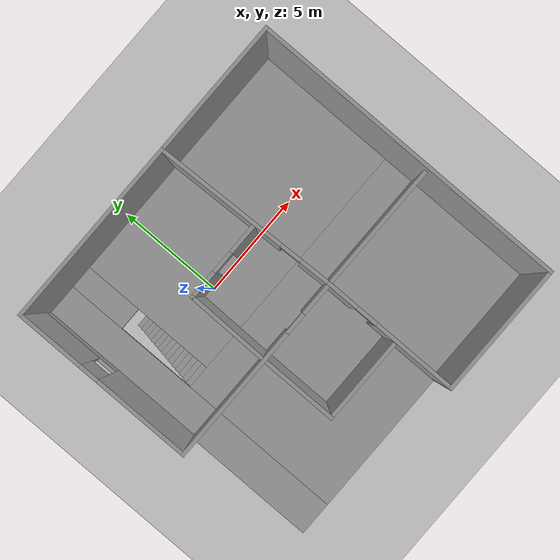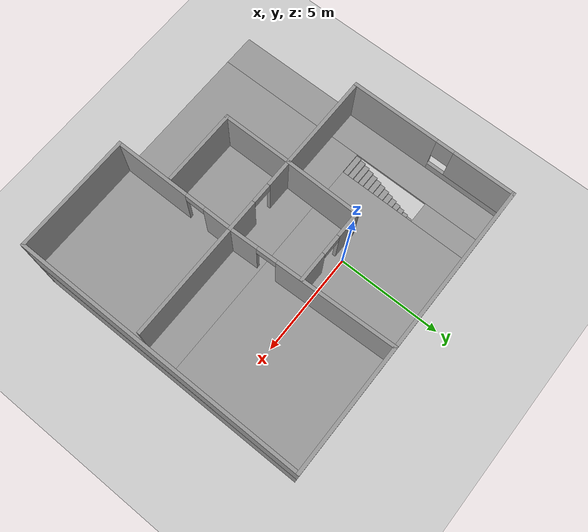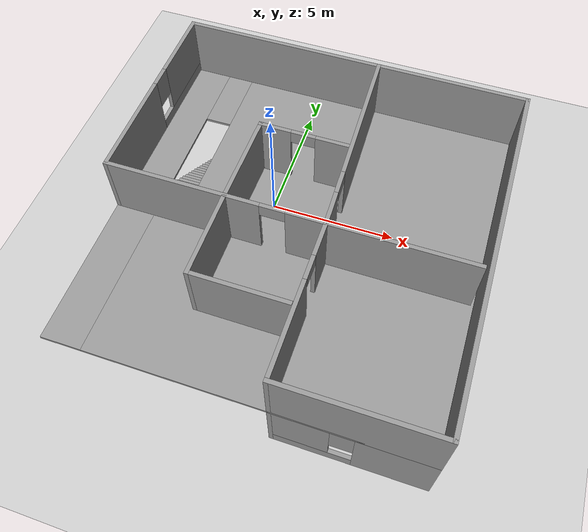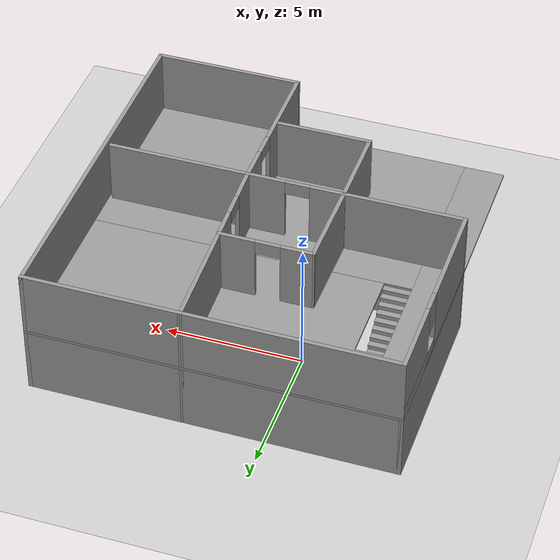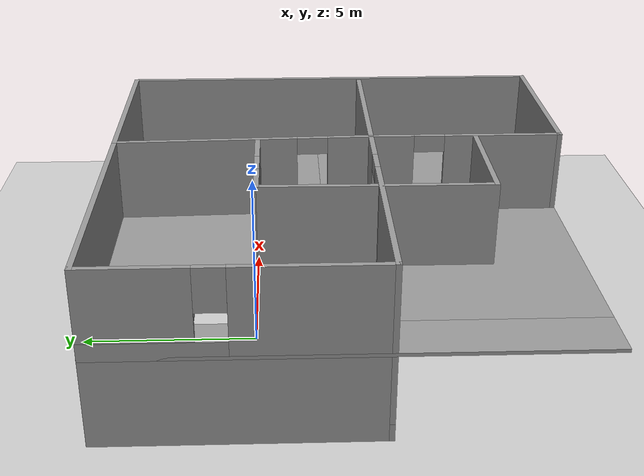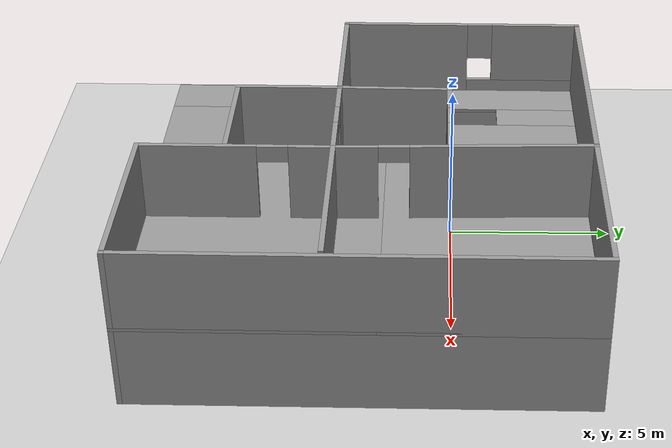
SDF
<sdf version="1.7">
 <world name="default">
  <light name="sun" type="directional">
   <pose>0 0 10 0 -0 0</pose>
   <diffuse>0.8 0.8 0.8 1</diffuse>
   <specular>0.2 0.2 0.2 1</specular>
   <attenuation>
    <range>1000</range>
    <constant>0.9</constant>
    <linear>0.01</linear>
    <quadratic>0.001</quadratic>
   </attenuation>
   <direction>-0.5 0.1 -0.9</direction>
   <spot><inner_angle>0</inner_angle><outer_angle>0</outer_angle><falloff>0</falloff></spot>
  </light>
  <model name="ground_plane">
   <static>1</static>
   <link name="link">
    <collision name="collision">
     <geometry><plane><normal>0 0 1</normal><size>100 100</size></plane></geometry>
     <surface>
      <contact><collide_bitmask>65535</collide_bitmask></contact>
      <friction><ode><mu>100</mu><mu2>50</mu2></ode></friction>
     </surface>
    </collision>
    <visual name="visual">
     <cast_shadows>0</cast_shadows>
     <geometry><plane><normal>0 0 1</normal><size>100 100</size></plane></geometry>
     <material>
      <script><uri>file://media/materials/scripts/gazebo.material</uri><name>Gazebo/Grey</name></script>
     </material>
    </visual>
   </link>
  </model>
  <gravity>0 0 -9.8</gravity>
  <magnetic_field>6e-06 2.3e-05 -4.2e-05</magnetic_field>
  <atmosphere type="adiabatic"/>
  <physics type="ode">
   <max_step_size>0.001</max_step_size>
   <real_time_factor>1</real_time_factor>
   <real_time_update_rate>1000</real_time_update_rate>
  </physics>
  <scene><ambient>0.4 0.4 0.4 1</ambient><background>0.7 0.7 0.7 1</background><shadows>1</shadows></scene>
  <spherical_coordinates>
   <surface_model>EARTH_WGS84</surface_model>
   <latitude_deg>0</latitude_deg>
   <longitude_deg>0</longitude_deg>
   <elevation>0</elevation>
   <heading_deg>0</heading_deg>
  </spherical_coordinates>
  <model name="two_level_house">
   <pose>1.88919 -2.48472 0 0 -0 0</pose>
   <link name="Floor_0">
    <pose>-0 0 2.5 0 -0 0</pose>
    <visual name="Floor_0_Visual_0">
     <pose>-5.94304 0 0.05 0 -0 0</pose>
     <geometry><box><size>1.46393 13.2525 0.1</size></box></geometry>
     <material>
      <script><uri>file://media/materials/scripts/gazebo.material</uri><name>Gazebo/Grey</name></script>
      <ambient>1 1 1 1</ambient>
     </material>
     <meta><layer>1</layer></meta>
    </visual>
    <collision name="Floor_0_Collision_0">
     <geometry><box><size>1.46393 13.2525 0.1</size></box></geometry>
     <pose>-5.94304 0 0.05 0 -0 0</pose>
    </collision>
    <visual name="Floor_0_Visual_1">
     <pose>0.731963 -3.0825 0.05 0 -0 0</pose>
     <geometry><box><size>11.8861 7.08746 0.1</size></box></geometry>
     <material>
      <script><uri>file://media/materials/scripts/gazebo.material</uri><name>Gazebo/Grey</name></script>
      <ambient>1 1 1 1</ambient>
     </material>
     <meta><layer>1</layer></meta>
    </visual>
    <collision name="Floor_0_Collision_1">
     <geometry><box><size>11.8861 7.08746 0.1</size></box></geometry>
     <pose>0.731963 -3.0825 0.05 0 -0 0</pose>
    </collision>
    <visual name="Floor_0_Visual_2">
     <pose>1.23196 3.54373 0.05 0 -0 0</pose>
     <geometry><box><size>10.8861 6.16499 0.1</size></box></geometry>
     <material>
      <script><uri>file://media/materials/scripts/gazebo.material</uri><name>Gazebo/Grey</name></script>
      <ambient>1 1 1 1</ambient>
     </material>
     <meta><layer>1</layer></meta>
    </visual>
    <collision name="Floor_0_Collision_2">
     <geometry><box><size>10.8861 6.16499 0.1</size></box></geometry>
     <pose>1.23196 3.54373 0.05 0 -0 0</pose>
    </collision>
    <visual name="Floor_0_Visual_3">
     <pose>-4.71107 5.29373 0.05 0 -0 0</pose>
     <geometry><box><size>1 2.66499 0.1</size></box></geometry>
     <material>
      <script><uri>file://media/materials/scripts/gazebo.material</uri><name>Gazebo/Grey</name></script>
      <ambient>1 1 1 1</ambient>
     </material>
     <meta><layer>1</layer></meta>
    </visual>
    <collision name="Floor_0_Collision_3">
     <geometry><box><size>1 2.66499 0.1</size></box></geometry>
     <pose>-4.71107 5.29373 0.05 0 -0 0</pose>
    </collision>
   </link>
   <link name="Stairs_0">
    <visual name="Stairs_0_Visual_0">
     <pose>-4.71107 3.84457 0.083333 0 -0 0</pose>
     <geometry><box><size>1 0.233333 0.166667</size></box></geometry>
     <material>
      <script><uri>file://media/materials/scripts/gazebo.material</uri><name>Gazebo/Grey</name></script>
      <ambient>1 1 1 1</ambient>
     </material>
     <meta><layer>0</layer></meta>
    </visual>
    <collision name="Stairs_0_Collision_0">
     <geometry><box><size>1 0.233333 0.166667</size></box></geometry>
     <pose>-4.71107 3.84457 0.083333 0 -0 0</pose>
    </collision>
    <visual name="Stairs_0_Visual_1">
     <pose>-4.71107 3.61124 0.25 0 -0 0</pose>
     <geometry><box><size>1 0.233333 0.166667</size></box></geometry>
     <material>
      <script><uri>file://media/materials/scripts/gazebo.material</uri><name>Gazebo/Grey</name></script>
      <ambient>1 1 1 1</ambient>
     </material>
     <meta><layer>0</layer></meta>
    </visual>
    <collision name="Stairs_0_Collision_1">
     <geometry><box><size>1 0.233333 0.166667</size></box></geometry>
     <pose>-4.71107 3.61124 0.25 0 -0 0</pose>
    </collision>
    <visual name="Stairs_0_Visual_2">
     <pose>-4.71107 3.3779 0.416667 0 -0 0</pose>
     <geometry><box><size>1 0.233333 0.166667</size></box></geometry>
     <material>
      <script><uri>file://media/materials/scripts/gazebo.material</uri><name>Gazebo/Grey</name></script>
      <ambient>1 1 1 1</ambient>
     </material>
     <meta><layer>0</layer></meta>
    </visual>
    <collision name="Stairs_0_Collision_2">
     <geometry><box><size>1 0.233333 0.166667</size></box></geometry>
     <pose>-4.71107 3.3779 0.416667 0 -0 0</pose>
    </collision>
    <visual name="Stairs_0_Visual_3">
     <pose>-4.71107 3.14457 0.583333 0 -0 0</pose>
     <geometry><box><size>1 0.233333 0.166667</size></box></geometry>
     <material>
      <script><uri>file://media/materials/scripts/gazebo.material</uri><name>Gazebo/Grey</name></script>
      <ambient>1 1 1 1</ambient>
     </material>
     <meta><layer>0</layer></meta>
    </visual>
    <collision name="Stairs_0_Collision_3">
     <geometry><box><size>1 0.233333 0.166667</size></box></geometry>
     <pose>-4.71107 3.14457 0.583333 0 -0 0</pose>
    </collision>
    <visual name="Stairs_0_Visual_4">
     <pose>-4.71107 2.91124 0.75 0 -0 0</pose>
     <geometry><box><size>1 0.233333 0.166667</size></box></geometry>
     <material>
      <script><uri>file://media/materials/scripts/gazebo.material</uri><name>Gazebo/Grey</name></script>
      <ambient>1 1 1 1</ambient>
     </material>
     <meta><layer>0</layer></meta>
    </visual>
    <collision name="Stairs_0_Collision_4">
     <geometry><box><size>1 0.233333 0.166667</size></box></geometry>
     <pose>-4.71107 2.91124 0.75 0 -0 0</pose>
    </collision>
    <visual name="Stairs_0_Visual_5">
     <pose>-4.71107 2.6779 0.916667 0 -0 0</pose>
     <geometry><box><size>1 0.233333 0.166667</size></box></geometry>
     <material>
      <script><uri>file://media/materials/scripts/gazebo.material</uri><name>Gazebo/Grey</name></script>
      <ambient>1 1 1 1</ambient>
     </material>
     <meta><layer>0</layer></meta>
    </visual>
    <collision name="Stairs_0_Collision_5">
     <geometry><box><size>1 0.233333 0.166667</size></box></geometry>
     <pose>-4.71107 2.6779 0.916667 0 -0 0</pose>
    </collision>
    <visual name="Stairs_0_Visual_6">
     <pose>-4.71107 2.44457 1.08333 0 -0 0</pose>
     <geometry><box><size>1 0.233333 0.166667</size></box></geometry>
     <material>
      <script><uri>file://media/materials/scripts/gazebo.material</uri><name>Gazebo/Grey</name></script>
      <ambient>1 1 1 1</ambient>
     </material>
     <meta><layer>0</layer></meta>
    </visual>
    <collision name="Stairs_0_Collision_6">
     <geometry><box><size>1 0.233333 0.166667</size></box></geometry>
     <pose>-4.71107 2.44457 1.08333 0 -0 0</pose>
    </collision>
    <visual name="Stairs_0_Visual_7">
     <pose>-4.71107 2.21124 1.25 0 -0 0</pose>
     <geometry><box><size>1 0.233333 0.166667</size></box></geometry>
     <material>
      <script><uri>file://media/materials/scripts/gazebo.material</uri><name>Gazebo/Grey</name></script>
      <ambient>1 1 1 1</ambient>
     </material>
     <meta><layer>0</layer></meta>
    </visual>
    <collision name="Stairs_0_Collision_7">
     <geometry><box><size>1 0.233333 0.166667</size></box></geometry>
     <pose>-4.71107 2.21124 1.25 0 -0 0</pose>
    </collision>
    <visual name="Stairs_0_Visual_8">
     <pose>-4.71107 1.9779 1.41667 0 -0 0</pose>
     <geometry><box><size>1 0.233333 0.166667</size></box></geometry>
     <material>
      <script><uri>file://media/materials/scripts/gazebo.material</uri><name>Gazebo/Grey</name></script>
      <ambient>1 1 1 1</ambient>
     </material>
     <meta><layer>0</layer></meta>
    </visual>
    <collision name="Stairs_0_Collision_8">
     <geometry><box><size>1 0.233333 0.166667</size></box></geometry>
     <pose>-4.71107 1.9779 1.41667 0 -0 0</pose>
    </collision>
    <visual name="Stairs_0_Visual_9">
     <pose>-4.71107 1.74457 1.58333 0 -0 0</pose>
     <geometry><box><size>1 0.233333 0.166667</size></box></geometry>
     <material>
      <script><uri>file://media/materials/scripts/gazebo.material</uri><name>Gazebo/Grey</name></script>
      <ambient>1 1 1 1</ambient>
     </material>
     <meta><layer>0</layer></meta>
    </visual>
    <collision name="Stairs_0_Collision_9">
     <geometry><box><size>1 0.233333 0.166667</size></box></geometry>
     <pose>-4.71107 1.74457 1.58333 0 -0 0</pose>
    </collision>
    <visual name="Stairs_0_Visual_10">
     <pose>-4.71107 1.51124 1.75 0 -0 0</pose>
     <geometry><box><size>1 0.233333 0.166667</size></box></geometry>
     <material>
      <script><uri>file://media/materials/scripts/gazebo.material</uri><name>Gazebo/Grey</name></script>
      <ambient>1 1 1 1</ambient>
     </material>
     <meta><layer>0</layer></meta>
    </visual>
    <collision name="Stairs_0_Collision_10">
     <geometry><box><size>1 0.233333 0.166667</size></box></geometry>
     <pose>-4.71107 1.51124 1.75 0 -0 0</pose>
    </collision>
    <visual name="Stairs_0_Visual_11">
     <pose>-4.71107 1.2779 1.91667 0 -0 0</pose>
     <geometry><box><size>1 0.233333 0.166667</size></box></geometry>
     <material>
      <script><uri>file://media/materials/scripts/gazebo.material</uri><name>Gazebo/Grey</name></script>
      <ambient>1 1 1 1</ambient>
     </material>
     <meta><layer>0</layer></meta>
    </visual>
    <collision name="Stairs_0_Collision_11">
     <geometry><box><size>1 0.233333 0.166667</size></box></geometry>
     <pose>-4.71107 1.2779 1.91667 0 -0 0</pose>
    </collision>
    <visual name="Stairs_0_Visual_12">
     <pose>-4.71107 1.04457 2.08333 0 -0 0</pose>
     <geometry><box><size>1 0.233333 0.166667</size></box></geometry>
     <material>
      <script><uri>file://media/materials/scripts/gazebo.material</uri><name>Gazebo/Grey</name></script>
      <ambient>1 1 1 1</ambient>
     </material>
     <meta><layer>0</layer></meta>
    </visual>
    <collision name="Stairs_0_Collision_12">
     <geometry><box><size>1 0.233333 0.166667</size></box></geometry>
     <pose>-4.71107 1.04457 2.08333 0 -0 0</pose>
    </collision>
    <visual name="Stairs_0_Visual_13">
     <pose>-4.71107 0.811236 2.25 0 -0 0</pose>
     <geometry><box><size>1 0.233333 0.166667</size></box></geometry>
     <material>
      <script><uri>file://media/materials/scripts/gazebo.material</uri><name>Gazebo/Grey</name></script>
      <ambient>1 1 1 1</ambient>
     </material>
     <meta><layer>0</layer></meta>
    </visual>
    <collision name="Stairs_0_Collision_13">
     <geometry><box><size>1 0.233333 0.166667</size></box></geometry>
     <pose>-4.71107 0.811236 2.25 0 -0 0</pose>
    </collision>
    <visual name="Stairs_0_Visual_14">
     <pose>-4.71107 0.577903 2.41667 0 -0 0</pose>
     <geometry><box><size>1 0.233333 0.166667</size></box></geometry>
     <material>
      <script><uri>file://media/materials/scripts/gazebo.material</uri><name>Gazebo/Grey</name></script>
      <ambient>1 1 1 1</ambient>
     </material>
     <meta><layer>0</layer></meta>
    </visual>
    <collision name="Stairs_0_Collision_14">
     <geometry><box><size>1 0.233333 0.166667</size></box></geometry>
     <pose>-4.71107 0.577903 2.41667 0 -0 0</pose>
    </collision>
   </link>
   <link name="Wall_0">
    <collision name="Wall_0_Collision">
     <geometry><box><size>7.75 0.15 2.5</size></box></geometry>
     <pose>0 0 1.25 0 -0 0</pose>
    </collision>
    <visual name="Wall_0_Visual">
     <pose>0 0 1.25 0 -0 0</pose>
     <geometry><box><size>7.75 0.15 2.5</size></box></geometry>
     <material>
      <script><uri>file://media/materials/scripts/gazebo.material</uri><name>Gazebo/Grey</name></script>
      <ambient>1 1 1 1</ambient>
     </material>
     <meta><layer>0</layer></meta>
    </visual>
    <pose>-2.8 6.54877 0 0 -0 0</pose>
   </link>
   <link name="Wall_1">
    <collision name="Wall_1_Collision">
     <geometry><box><size>5.75 0.15 2.5</size></box></geometry>
     <pose>0 0 1.25 0 -0 0</pose>
    </collision>
    <visual name="Wall_1_Visual">
     <pose>0 0 1.25 0 -0 0</pose>
     <geometry><box><size>5.75 0.15 2.5</size></box></geometry>
     <material>
      <script><uri>file://media/materials/scripts/gazebo.material</uri><name>Gazebo/Grey</name></script>
      <ambient>1 1 1 1</ambient>
     </material>
     <meta><layer>0</layer></meta>
    </visual>
    <pose>3.8 6.54877 0 0 -0 0</pose>
   </link>
   <link name="Wall_10">
    <pose>3.8 -0.951228 0 0 -0 0</pose>
    <visual name="Wall_10_Visual_0">
     <pose>-1.68287 0 1.25 0 -0 0</pose>
     <geometry><box><size>1.88426 0.15 2.5</size></box></geometry>
     <material>
      <script><uri>file://media/materials/scripts/gazebo.material</uri><name>Gazebo/Grey</name></script>
      <ambient>1 1 1 1</ambient>
     </material>
     <meta><layer>0</layer></meta>
    </visual>
    <collision name="Wall_10_Collision_0">
     <geometry><box><size>1.88426 0.15 2.5</size></box></geometry>
     <pose>-1.68287 0 1.25 0 -0 0</pose>
    </collision>
    <visual name="Wall_10_Visual_1">
     <pose>1.39213 0 1.25 0 -0 0</pose>
     <geometry><box><size>2.46574 0.15 2.5</size></box></geometry>
     <material>
      <script><uri>file://media/materials/scripts/gazebo.material</uri><name>Gazebo/Grey</name></script>
      <ambient>1 1 1 1</ambient>
     </material>
     <meta><layer>0</layer></meta>
    </visual>
    <collision name="Wall_10_Collision_1">
     <geometry><box><size>2.46574 0.15 2.5</size></box></geometry>
     <pose>1.39213 0 1.25 0 -0 0</pose>
    </collision>
    <visual name="Wall_10_Visual_2">
     <pose>-0.290744 0 2.25 0 -0 0</pose>
     <geometry><box><size>0.9 0.15 0.5</size></box></geometry>
     <material>
      <script><uri>file://media/materials/scripts/gazebo.material</uri><name>Gazebo/Grey</name></script>
      <ambient>1 1 1 1</ambient>
     </material>
     <meta><layer>0</layer></meta>
    </visual>
    <collision name="Wall_10_Collision_2">
     <geometry><box><size>0.9 0.15 0.5</size></box></geometry>
     <pose>-0.290744 0 2.25 0 -0 0</pose>
    </collision>
   </link>
   <link name="Wall_12">
    <collision name="Wall_12_Collision">
     <geometry><box><size>3.25 0.15 2.5</size></box></geometry>
     <pose>0 0 1.25 0 -0 0</pose>
    </collision>
    <visual name="Wall_12_Visual">
     <pose>0 0 1.25 0 -0 0</pose>
     <geometry><box><size>3.25 0.15 2.5</size></box></geometry>
     <material>
      <script><uri>file://media/materials/scripts/gazebo.material</uri><name>Gazebo/Grey</name></script>
      <ambient>1 1 1 1</ambient>
     </material>
     <meta><layer>0</layer></meta>
    </visual>
    <pose>-2.26247 -2.48698 0 0 -0 -1.5708</pose>
   </link>
   <link name="Wall_13">
    <pose>-0.587465 -4.03697 0 0 -0 0</pose>
    <visual name="Wall_13_Visual_0">
     <pose>-1.15045 0 1.25 0 -0 0</pose>
     <geometry><box><size>1.19911 0.15 2.5</size></box></geometry>
     <material>
      <script><uri>file://media/materials/scripts/gazebo.material</uri><name>Gazebo/Grey</name></script>
      <ambient>1 1 1 1</ambient>
     </material>
     <meta><layer>0</layer></meta>
    </visual>
    <collision name="Wall_13_Collision_0">
     <geometry><box><size>1.19911 0.15 2.5</size></box></geometry>
     <pose>-1.15045 0 1.25 0 -0 0</pose>
    </collision>
    <visual name="Wall_13_Visual_1">
     <pose>1.04955 0 1.25 0 -0 0</pose>
     <geometry><box><size>1.40089 0.15 2.5</size></box></geometry>
     <material>
      <script><uri>file://media/materials/scripts/gazebo.material</uri><name>Gazebo/Grey</name></script>
      <ambient>1 1 1 1</ambient>
     </material>
     <meta><layer>0</layer></meta>
    </visual>
    <collision name="Wall_13_Collision_1">
     <geometry><box><size>1.40089 0.15 2.5</size></box></geometry>
     <pose>1.04955 0 1.25 0 -0 0</pose>
    </collision>
    <visual name="Wall_13_Visual_2">
     <pose>-0.100894 0 2.25 0 -0 0</pose>
     <geometry><box><size>0.9 0.15 0.5</size></box></geometry>
     <material>
      <script><uri>file://media/materials/scripts/gazebo.material</uri><name>Gazebo/Grey</name></script>
      <ambient>1 1 1 1</ambient>
     </material>
     <meta><layer>0</layer></meta>
    </visual>
    <collision name="Wall_13_Collision_2">
     <geometry><box><size>0.9 0.15 0.5</size></box></geometry>
     <pose>-0.100894 0 2.25 0 -0 0</pose>
    </collision>
   </link>
   <link name="Wall_15">
    <collision name="Wall_15_Collision">
     <geometry><box><size>3.5 0.15 2.5</size></box></geometry>
     <pose>0 0 1.25 0 -0 0</pose>
    </collision>
    <visual name="Wall_15_Visual">
     <pose>0 0 1.25 0 -0 0</pose>
     <geometry><box><size>3.5 0.15 2.5</size></box></geometry>
     <material>
      <script><uri>file://media/materials/scripts/gazebo.material</uri><name>Gazebo/Grey</name></script>
      <ambient>1 1 1 1</ambient>
     </material>
     <meta><layer>0</layer></meta>
    </visual>
    <pose>-0.544393 2.38614 0 0 -0 3.14159</pose>
   </link>
   <link name="Wall_16">
    <pose>-2.24093 0.724581 0 0 -0 -1.58376</pose>
    <visual name="Wall_16_Visual_0">
     <pose>-0.995888 0 1.25 0 -0 0</pose>
     <geometry><box><size>1.48162 0.15 2.5</size></box></geometry>
     <material>
      <script><uri>file://media/materials/scripts/gazebo.material</uri><name>Gazebo/Grey</name></script>
      <ambient>1 1 1 1</ambient>
     </material>
     <meta><layer>0</layer></meta>
    </visual>
    <collision name="Wall_16_Collision_0">
     <geometry><box><size>1.48162 0.15 2.5</size></box></geometry>
     <pose>-0.995888 0 1.25 0 -0 0</pose>
    </collision>
    <visual name="Wall_16_Visual_1">
     <pose>1.19081 0 1.25 0 -0 0</pose>
     <geometry><box><size>1.09177 0.15 2.5</size></box></geometry>
     <material>
      <script><uri>file://media/materials/scripts/gazebo.material</uri><name>Gazebo/Grey</name></script>
      <ambient>1 1 1 1</ambient>
     </material>
     <meta><layer>0</layer></meta>
    </visual>
    <collision name="Wall_16_Collision_1">
     <geometry><box><size>1.09177 0.15 2.5</size></box></geometry>
     <pose>1.19081 0 1.25 0 -0 0</pose>
    </collision>
    <visual name="Wall_16_Visual_2">
     <pose>0.19492 0 2.25 0 -0 0</pose>
     <geometry><box><size>0.9 0.15 0.5</size></box></geometry>
     <material>
      <script><uri>file://media/materials/scripts/gazebo.material</uri><name>Gazebo/Grey</name></script>
      <ambient>1 1 1 1</ambient>
     </material>
     <meta><layer>0</layer></meta>
    </visual>
    <collision name="Wall_16_Collision_2">
     <geometry><box><size>0.9 0.15 0.5</size></box></geometry>
     <pose>0.19492 0 2.25 0 -0 0</pose>
    </collision>
   </link>
   <link name="Wall_18">
    <collision name="Wall_18_Collision">
     <geometry><box><size>7.75 0.15 2.5</size></box></geometry>
     <pose>0 0 1.25 0 -0 0</pose>
    </collision>
    <visual name="Wall_18_Visual">
     <pose>0 0 1.25 0 -0 0</pose>
     <geometry><box><size>7.75 0.15 2.5</size></box></geometry>
     <material>
      <script><uri>file://media/materials/scripts/gazebo.material</uri><name>Gazebo/Grey</name></script>
      <ambient>1 1 1 1</ambient>
     </material>
     <meta><layer>1</layer></meta>
    </visual>
    <pose>-2.8 6.54877 2.5 0 -0 0</pose>
   </link>
   <link name="Wall_19">
    <collision name="Wall_19_Collision">
     <geometry><box><size>5.75 0.15 2.5</size></box></geometry>
     <pose>0 0 1.25 0 -0 0</pose>
    </collision>
    <visual name="Wall_19_Visual">
     <pose>0 0 1.25 0 -0 0</pose>
     <geometry><box><size>5.75 0.15 2.5</size></box></geometry>
     <material>
      <script><uri>file://media/materials/scripts/gazebo.material</uri><name>Gazebo/Grey</name></script>
      <ambient>1 1 1 1</ambient>
     </material>
     <meta><layer>1</layer></meta>
    </visual>
    <pose>3.8 6.54877 2.5 0 -0 0</pose>
   </link>
   <link name="Wall_2">
    <collision name="Wall_2_Collision">
     <geometry><box><size>13.25 0.15 2.5</size></box></geometry>
     <pose>0 0 1.25 0 -0 0</pose>
    </collision>
    <visual name="Wall_2_Visual">
     <pose>0 0 1.25 0 -0 0</pose>
     <geometry><box><size>13.25 0.15 2.5</size></box></geometry>
     <material>
      <script><uri>file://media/materials/scripts/gazebo.material</uri><name>Gazebo/Grey</name></script>
      <ambient>1 1 1 1</ambient>
     </material>
     <meta><layer>0</layer></meta>
    </visual>
    <pose>6.6 -0.001228 0 0 -0 -1.5708</pose>
   </link>
   <link name="Wall_20">
    <collision name="Wall_20_Collision">
     <geometry><box><size>13.25 0.15 2.5</size></box></geometry>
     <pose>0 0 1.25 0 -0 0</pose>
    </collision>
    <visual name="Wall_20_Visual">
     <pose>0 0 1.25 0 -0 0</pose>
     <geometry><box><size>13.25 0.15 2.5</size></box></geometry>
     <material>
      <script><uri>file://media/materials/scripts/gazebo.material</uri><name>Gazebo/Grey</name></script>
      <ambient>1 1 1 1</ambient>
     </material>
     <meta><layer>1</layer></meta>
    </visual>
    <pose>6.6 -0.001228 2.5 0 -0 -1.5708</pose>
   </link>
   <link name="Wall_21">
    <collision name="Wall_21_Collision">
     <geometry><box><size>5.5 0.15 2.5</size></box></geometry>
     <pose>0 0 1.25 0 -0 0</pose>
    </collision>
    <visual name="Wall_21_Visual">
     <pose>0 0 1.25 0 -0 0</pose>
     <geometry><box><size>5.5 0.15 2.5</size></box></geometry>
     <material>
      <script><uri>file://media/materials/scripts/gazebo.material</uri><name>Gazebo/Grey</name></script>
      <ambient>1 1 1 1</ambient>
     </material>
     <meta><layer>1</layer></meta>
    </visual>
    <pose>3.925 -6.55123 2.5 0 -0 3.14159</pose>
   </link>
   <link name="Wall_22">
    <pose>1.25 -3.75123 2.5 0 -0 1.5708</pose>
    <visual name="Wall_22_Visual_0">
     <pose>-1.1265 0 1.25 0 -0 0</pose>
     <geometry><box><size>3.497 0.15 2.5</size></box></geometry>
     <material>
      <script><uri>file://media/materials/scripts/gazebo.material</uri><name>Gazebo/Grey</name></script>
      <ambient>1 1 1 1</ambient>
     </material>
     <meta><layer>1</layer></meta>
    </visual>
    <collision name="Wall_22_Collision_0">
     <geometry><box><size>3.497 0.15 2.5</size></box></geometry>
     <pose>-1.1265 0 1.25 0 -0 0</pose>
    </collision>
    <visual name="Wall_22_Visual_1">
     <pose>2.1985 0 1.25 0 -0 0</pose>
     <geometry><box><size>1.35301 0.15 2.5</size></box></geometry>
     <material>
      <script><uri>file://media/materials/scripts/gazebo.material</uri><name>Gazebo/Grey</name></script>
      <ambient>1 1 1 1</ambient>
     </material>
     <meta><layer>1</layer></meta>
    </visual>
    <collision name="Wall_22_Collision_1">
     <geometry><box><size>1.35301 0.15 2.5</size></box></geometry>
     <pose>2.1985 0 1.25 0 -0 0</pose>
    </collision>
    <visual name="Wall_22_Visual_2">
     <pose>1.072 0 2.25 0 -0 0</pose>
     <geometry><box><size>0.9 0.15 0.5</size></box></geometry>
     <material>
      <script><uri>file://media/materials/scripts/gazebo.material</uri><name>Gazebo/Grey</name></script>
      <ambient>1 1 1 1</ambient>
     </material>
     <meta><layer>1</layer></meta>
    </visual>
    <collision name="Wall_22_Collision_2">
     <geometry><box><size>0.9 0.15 0.5</size></box></geometry>
     <pose>1.072 0 2.25 0 -0 0</pose>
    </collision>
   </link>
   <link name="Wall_23">
    <pose>-2.675 -0.951228 2.5 0 -0 3.14159</pose>
    <visual name="Wall_23_Visual_0">
     <pose>-3.27079 0 1.25 0 -0 0</pose>
     <geometry><box><size>1.45842 0.15 2.5</size></box></geometry>
     <material>
      <script><uri>file://media/materials/scripts/gazebo.material</uri><name>Gazebo/Grey</name></script>
      <ambient>1 1 1 1</ambient>
     </material>
     <meta><layer>1</layer></meta>
    </visual>
    <collision name="Wall_23_Collision_0">
     <geometry><box><size>1.45842 0.15 2.5</size></box></geometry>
     <pose>-3.27079 0 1.25 0 -0 0</pose>
    </collision>
    <visual name="Wall_23_Visual_1">
     <pose>1.17921 0 1.25 0 -0 0</pose>
     <geometry><box><size>5.64158 0.15 2.5</size></box></geometry>
     <material>
      <script><uri>file://media/materials/scripts/gazebo.material</uri><name>Gazebo/Grey</name></script>
      <ambient>1 1 1 1</ambient>
     </material>
     <meta><layer>1</layer></meta>
    </visual>
    <collision name="Wall_23_Collision_1">
     <geometry><box><size>5.64158 0.15 2.5</size></box></geometry>
     <pose>1.17921 0 1.25 0 -0 0</pose>
    </collision>
    <visual name="Wall_23_Visual_2">
     <pose>-2.09158 0 2.25 0 -0 0</pose>
     <geometry><box><size>0.9 0.15 0.5</size></box></geometry>
     <material>
      <script><uri>file://media/materials/scripts/gazebo.material</uri><name>Gazebo/Grey</name></script>
      <ambient>1 1 1 1</ambient>
     </material>
     <meta><layer>1</layer></meta>
    </visual>
    <collision name="Wall_23_Collision_2">
     <geometry><box><size>0.9 0.15 0.5</size></box></geometry>
     <pose>-2.09158 0 2.25 0 -0 0</pose>
    </collision>
   </link>
   <link name="Wall_24">
    <pose>-6.6 2.79877 2.5 0 -0 1.5708</pose>
    <visual name="Wall_24_Visual_0">
     <pose>-1.81161 0 1.25 0 -0 0</pose>
     <geometry><box><size>4.02679 0.15 2.5</size></box></geometry>
     <material>
      <script><uri>file://media/materials/scripts/gazebo.material</uri><name>Gazebo/Grey</name></script>
      <ambient>1 1 1 1</ambient>
     </material>
     <meta><layer>1</layer></meta>
    </visual>
    <collision name="Wall_24_Collision_0">
     <geometry><box><size>4.02679 0.15 2.5</size></box></geometry>
     <pose>-1.81161 0 1.25 0 -0 0</pose>
    </collision>
    <visual name="Wall_24_Visual_1">
     <pose>2.01339 0 0.25 0 -0 0</pose>
     <geometry><box><size>3.62321 0.15 0.5</size></box></geometry>
     <material>
      <script><uri>file://media/materials/scripts/gazebo.material</uri><name>Gazebo/Grey</name></script>
      <ambient>1 1 1 1</ambient>
     </material>
     <meta><layer>1</layer></meta>
    </visual>
    <collision name="Wall_24_Collision_1">
     <geometry><box><size>3.62321 0.15 0.5</size></box></geometry>
     <pose>2.01339 0 0.25 0 -0 0</pose>
    </collision>
    <visual name="Wall_24_Visual_2">
     <pose>2.41339 0 1.5 0 -0 0</pose>
     <geometry><box><size>2.82321 0.15 2</size></box></geometry>
     <material>
      <script><uri>file://media/materials/scripts/gazebo.material</uri><name>Gazebo/Grey</name></script>
      <ambient>1 1 1 1</ambient>
     </material>
     <meta><layer>1</layer></meta>
    </visual>
    <collision name="Wall_24_Collision_2">
     <geometry><box><size>2.82321 0.15 2</size></box></geometry>
     <pose>2.41339 0 1.5 0 -0 0</pose>
    </collision>
    <visual name="Wall_24_Visual_3">
     <pose>0.601789 0 1.9 0 -0 0</pose>
     <geometry><box><size>0.8 0.15 1.2</size></box></geometry>
     <material>
      <script><uri>file://media/materials/scripts/gazebo.material</uri><name>Gazebo/Grey</name></script>
      <ambient>1 1 1 1</ambient>
     </material>
     <meta><layer>1</layer></meta>
    </visual>
    <collision name="Wall_24_Collision_3">
     <geometry><box><size>0.8 0.15 1.2</size></box></geometry>
     <pose>0.601789 0 1.9 0 -0 0</pose>
    </collision>
   </link>
   <link name="Wall_25">
    <pose>1.125 2.79877 2.5 0 -0 -1.53747</pose>
    <visual name="Wall_25_Visual_0">
     <pose>-1.12873 0 1.25 0 -0 0</pose>
     <geometry><box><size>5.3967 0.15 2.5</size></box></geometry>
     <material>
      <script><uri>file://media/materials/scripts/gazebo.material</uri><name>Gazebo/Grey</name></script>
      <ambient>1 1 1 1</ambient>
     </material>
     <meta><layer>1</layer></meta>
    </visual>
    <collision name="Wall_25_Collision_0">
     <geometry><box><size>5.3967 0.15 2.5</size></box></geometry>
     <pose>-1.12873 0 1.25 0 -0 0</pose>
    </collision>
    <visual name="Wall_25_Visual_1">
     <pose>3.14835 0 1.25 0 -0 0</pose>
     <geometry><box><size>1.35746 0.15 2.5</size></box></geometry>
     <material>
      <script><uri>file://media/materials/scripts/gazebo.material</uri><name>Gazebo/Grey</name></script>
      <ambient>1 1 1 1</ambient>
     </material>
     <meta><layer>1</layer></meta>
    </visual>
    <collision name="Wall_25_Collision_1">
     <geometry><box><size>1.35746 0.15 2.5</size></box></geometry>
     <pose>3.14835 0 1.25 0 -0 0</pose>
    </collision>
    <visual name="Wall_25_Visual_2">
     <pose>2.01962 0 2.25 0 -0 0</pose>
     <geometry><box><size>0.9 0.15 0.5</size></box></geometry>
     <material>
      <script><uri>file://media/materials/scripts/gazebo.material</uri><name>Gazebo/Grey</name></script>
      <ambient>1 1 1 1</ambient>
     </material>
     <meta><layer>1</layer></meta>
    </visual>
    <collision name="Wall_25_Collision_2">
     <geometry><box><size>0.9 0.15 0.5</size></box></geometry>
     <pose>2.01962 0 2.25 0 -0 0</pose>
    </collision>
   </link>
   <link name="Wall_26">
    <collision name="Wall_26_Collision">
     <geometry><box><size>5.25 0.15 2.5</size></box></geometry>
     <pose>0 0 1.25 0 -0 0</pose>
    </collision>
    <visual name="Wall_26_Visual">
     <pose>0 0 1.25 0 -0 0</pose>
     <geometry><box><size>5.25 0.15 2.5</size></box></geometry>
     <material>
      <script><uri>file://media/materials/scripts/gazebo.material</uri><name>Gazebo/Grey</name></script>
      <ambient>1 1 1 1</ambient>
     </material>
     <meta><layer>1</layer></meta>
    </visual>
    <pose>3.8 -0.951228 2.5 0 -0 0</pose>
   </link>
   <link name="Wall_27">
    <collision name="Wall_27_Collision">
     <geometry><box><size>3.25 0.15 2.5</size></box></geometry>
     <pose>0 0 1.25 0 -0 0</pose>
    </collision>
    <visual name="Wall_27_Visual">
     <pose>0 0 1.25 0 -0 0</pose>
     <geometry><box><size>3.25 0.15 2.5</size></box></geometry>
     <material>
      <script><uri>file://media/materials/scripts/gazebo.material</uri><name>Gazebo/Grey</name></script>
      <ambient>1 1 1 1</ambient>
     </material>
     <meta><layer>1</layer></meta>
    </visual>
    <pose>-2.26247 -2.48698 2.5 0 -0 -1.5708</pose>
   </link>
   <link name="Wall_28">
    <collision name="Wall_28_Collision">
     <geometry><box><size>3.5 0.15 2.5</size></box></geometry>
     <pose>0 0 1.25 0 -0 0</pose>
    </collision>
    <visual name="Wall_28_Visual">
     <pose>0 0 1.25 0 -0 0</pose>
     <geometry><box><size>3.5 0.15 2.5</size></box></geometry>
     <material>
      <script><uri>file://media/materials/scripts/gazebo.material</uri><name>Gazebo/Grey</name></script>
      <ambient>1 1 1 1</ambient>
     </material>
     <meta><layer>1</layer></meta>
    </visual>
    <pose>-0.587465 -4.03697 2.5 0 -0 0</pose>
   </link>
   <link name="Wall_29">
    <pose>-0.544393 2.38614 2.5 0 -0 3.14159</pose>
    <visual name="Wall_29_Visual_0">
     <pose>-1.063 0 1.25 0 -0 0</pose>
     <geometry><box><size>1.37401 0.15 2.5</size></box></geometry>
     <material>
      <script><uri>file://media/materials/scripts/gazebo.material</uri><name>Gazebo/Grey</name></script>
      <ambient>1 1 1 1</ambient>
     </material>
     <meta><layer>1</layer></meta>
    </visual>
    <collision name="Wall_29_Collision_0">
     <geometry><box><size>1.37401 0.15 2.5</size></box></geometry>
     <pose>-1.063 0 1.25 0 -0 0</pose>
    </collision>
    <visual name="Wall_29_Visual_1">
     <pose>1.137 0 1.25 0 -0 0</pose>
     <geometry><box><size>1.22599 0.15 2.5</size></box></geometry>
     <material>
      <script><uri>file://media/materials/scripts/gazebo.material</uri><name>Gazebo/Grey</name></script>
      <ambient>1 1 1 1</ambient>
     </material>
     <meta><layer>1</layer></meta>
    </visual>
    <collision name="Wall_29_Collision_1">
     <geometry><box><size>1.22599 0.15 2.5</size></box></geometry>
     <pose>1.137 0 1.25 0 -0 0</pose>
    </collision>
    <visual name="Wall_29_Visual_2">
     <pose>0.074006 0 2.25 0 -0 0</pose>
     <geometry><box><size>0.9 0.15 0.5</size></box></geometry>
     <material>
      <script><uri>file://media/materials/scripts/gazebo.material</uri><name>Gazebo/Grey</name></script>
      <ambient>1 1 1 1</ambient>
     </material>
     <meta><layer>1</layer></meta>
    </visual>
    <collision name="Wall_29_Collision_2">
     <geometry><box><size>0.9 0.15 0.5</size></box></geometry>
     <pose>0.074006 0 2.25 0 -0 0</pose>
    </collision>
   </link>
   <link name="Wall_3">
    <pose>3.925 -6.55123 0 0 -0 3.14159</pose>
    <visual name="Wall_3_Visual_0">
     <pose>-1.4196 0 1.25 0 -0 0</pose>
     <geometry><box><size>2.6608 0.15 2.5</size></box></geometry>
     <material>
      <script><uri>file://media/materials/scripts/gazebo.material</uri><name>Gazebo/Grey</name></script>
      <ambient>1 1 1 1</ambient>
     </material>
     <meta><layer>0</layer></meta>
    </visual>
    <collision name="Wall_3_Collision_0">
     <geometry><box><size>2.6608 0.15 2.5</size></box></geometry>
     <pose>-1.4196 0 1.25 0 -0 0</pose>
    </collision>
    <visual name="Wall_3_Visual_1">
     <pose>1.3304 0 0.25 0 -0 0</pose>
     <geometry><box><size>2.8392 0.15 0.5</size></box></geometry>
     <material>
      <script><uri>file://media/materials/scripts/gazebo.material</uri><name>Gazebo/Grey</name></script>
      <ambient>1 1 1 1</ambient>
     </material>
     <meta><layer>0</layer></meta>
    </visual>
    <collision name="Wall_3_Collision_1">
     <geometry><box><size>2.8392 0.15 0.5</size></box></geometry>
     <pose>1.3304 0 0.25 0 -0 0</pose>
    </collision>
    <visual name="Wall_3_Visual_2">
     <pose>1.7304 0 1.5 0 -0 0</pose>
     <geometry><box><size>2.0392 0.15 2</size></box></geometry>
     <material>
      <script><uri>file://media/materials/scripts/gazebo.material</uri><name>Gazebo/Grey</name></script>
      <ambient>1 1 1 1</ambient>
     </material>
     <meta><layer>0</layer></meta>
    </visual>
    <collision name="Wall_3_Collision_2">
     <geometry><box><size>2.0392 0.15 2</size></box></geometry>
     <pose>1.7304 0 1.5 0 -0 0</pose>
    </collision>
    <visual name="Wall_3_Visual_3">
     <pose>0.310803 0 1.9 0 -0 0</pose>
     <geometry><box><size>0.8 0.15 1.2</size></box></geometry>
     <material>
      <script><uri>file://media/materials/scripts/gazebo.material</uri><name>Gazebo/Grey</name></script>
      <ambient>1 1 1 1</ambient>
     </material>
     <meta><layer>0</layer></meta>
    </visual>
    <collision name="Wall_3_Collision_3">
     <geometry><box><size>0.8 0.15 1.2</size></box></geometry>
     <pose>0.310803 0 1.9 0 -0 0</pose>
    </collision>
   </link>
   <link name="Wall_30">
    <collision name="Wall_30_Collision">
     <geometry><box><size>3.47339 0.15 2.5</size></box></geometry>
     <pose>0 0 1.25 0 -0 0</pose>
    </collision>
    <visual name="Wall_30_Visual">
     <pose>0 0 1.25 0 -0 0</pose>
     <geometry><box><size>3.47339 0.15 2.5</size></box></geometry>
     <material>
      <script><uri>file://media/materials/scripts/gazebo.material</uri><name>Gazebo/Grey</name></script>
      <ambient>1 1 1 1</ambient>
     </material>
     <meta><layer>1</layer></meta>
    </visual>
    <pose>-2.24093 0.724581 2.5 0 -0 -1.58376</pose>
   </link>
   <link name="Wall_4">
    <collision name="Wall_4_Collision">
     <geometry><box><size>5.75 0.15 2.5</size></box></geometry>
     <pose>0 0 1.25 0 -0 0</pose>
    </collision>
    <visual name="Wall_4_Visual">
     <pose>0 0 1.25 0 -0 0</pose>
     <geometry><box><size>5.75 0.15 2.5</size></box></geometry>
     <material>
      <script><uri>file://media/materials/scripts/gazebo.material</uri><name>Gazebo/Grey</name></script>
      <ambient>1 1 1 1</ambient>
     </material>
     <meta><layer>0</layer></meta>
    </visual>
    <pose>1.25 -3.75123 0 0 -0 1.5708</pose>
   </link>
   <link name="Wall_5">
    <pose>-2.675 -0.951228 0 0 -0 3.14159</pose>
    <visual name="Wall_5_Visual_0">
     <pose>-3.0784 0 1.25 0 -0 0</pose>
     <geometry><box><size>1.8432 0.15 2.5</size></box></geometry>
     <material>
      <script><uri>file://media/materials/scripts/gazebo.material</uri><name>Gazebo/Grey</name></script>
      <ambient>1 1 1 1</ambient>
     </material>
     <meta><layer>0</layer></meta>
    </visual>
    <collision name="Wall_5_Collision_0">
     <geometry><box><size>1.8432 0.15 2.5</size></box></geometry>
     <pose>-3.0784 0 1.25 0 -0 0</pose>
    </collision>
    <visual name="Wall_5_Visual_1">
     <pose>0.154657 0 1.25 0 -0 0</pose>
     <geometry><box><size>2.82291 0.15 2.5</size></box></geometry>
     <material>
      <script><uri>file://media/materials/scripts/gazebo.material</uri><name>Gazebo/Grey</name></script>
      <ambient>1 1 1 1</ambient>
     </material>
     <meta><layer>0</layer></meta>
    </visual>
    <collision name="Wall_5_Collision_1">
     <geometry><box><size>2.82291 0.15 2.5</size></box></geometry>
     <pose>0.154657 0 1.25 0 -0 0</pose>
    </collision>
    <visual name="Wall_5_Visual_2">
     <pose>2.78306 0 0.25 0 -0 0</pose>
     <geometry><box><size>2.43389 0.15 0.5</size></box></geometry>
     <material>
      <script><uri>file://media/materials/scripts/gazebo.material</uri><name>Gazebo/Grey</name></script>
      <ambient>1 1 1 1</ambient>
     </material>
     <meta><layer>0</layer></meta>
    </visual>
    <collision name="Wall_5_Collision_2">
     <geometry><box><size>2.43389 0.15 0.5</size></box></geometry>
     <pose>2.78306 0 0.25 0 -0 0</pose>
    </collision>
    <visual name="Wall_5_Visual_3">
     <pose>3.18306 0 1.5 0 -0 0</pose>
     <geometry><box><size>1.63389 0.15 2</size></box></geometry>
     <material>
      <script><uri>file://media/materials/scripts/gazebo.material</uri><name>Gazebo/Grey</name></script>
      <ambient>1 1 1 1</ambient>
     </material>
     <meta><layer>0</layer></meta>
    </visual>
    <collision name="Wall_5_Collision_3">
     <geometry><box><size>1.63389 0.15 2</size></box></geometry>
     <pose>3.18306 0 1.5 0 -0 0</pose>
    </collision>
    <visual name="Wall_5_Visual_4">
     <pose>1.96611 0 1.9 0 -0 0</pose>
     <geometry><box><size>0.8 0.15 1.2</size></box></geometry>
     <material>
      <script><uri>file://media/materials/scripts/gazebo.material</uri><name>Gazebo/Grey</name></script>
      <ambient>1 1 1 1</ambient>
     </material>
     <meta><layer>0</layer></meta>
    </visual>
    <collision name="Wall_5_Collision_4">
     <geometry><box><size>0.8 0.15 1.2</size></box></geometry>
     <pose>1.96611 0 1.9 0 -0 0</pose>
    </collision>
    <visual name="Wall_5_Visual_5">
     <pose>-1.7068 0 2.25 0 -0 0</pose>
     <geometry><box><size>0.9 0.15 0.5</size></box></geometry>
     <material>
      <script><uri>file://media/materials/scripts/gazebo.material</uri><name>Gazebo/Grey</name></script>
      <ambient>1 1 1 1</ambient>
     </material>
     <meta><layer>0</layer></meta>
    </visual>
    <collision name="Wall_5_Collision_5">
     <geometry><box><size>0.9 0.15 0.5</size></box></geometry>
     <pose>-1.7068 0 2.25 0 -0 0</pose>
    </collision>
   </link>
   <link name="Wall_6">
    <collision name="Wall_6_Collision">
     <geometry><box><size>7.65 0.15 2.5</size></box></geometry>
     <pose>0 0 1.25 0 -0 0</pose>
    </collision>
    <visual name="Wall_6_Visual">
     <pose>0 0 1.25 0 -0 0</pose>
     <geometry><box><size>7.65 0.15 2.5</size></box></geometry>
     <material>
      <script><uri>file://media/materials/scripts/gazebo.material</uri><name>Gazebo/Grey</name></script>
      <ambient>1 1 1 1</ambient>
     </material>
     <meta><layer>0</layer></meta>
    </visual>
    <pose>-6.6 2.79877 0 0 -0 1.5708</pose>
   </link>
   <link name="Wall_9">
    <pose>1.125 2.79877 0 0 -0 -1.53747</pose>
    <visual name="Wall_9_Visual_0">
     <pose>-1.16136 0 1.25 0 -0 0</pose>
     <geometry><box><size>5.33144 0.15 2.5</size></box></geometry>
     <material>
      <script><uri>file://media/materials/scripts/gazebo.material</uri><name>Gazebo/Grey</name></script>
      <ambient>1 1 1 1</ambient>
     </material>
     <meta><layer>0</layer></meta>
    </visual>
    <collision name="Wall_9_Collision_0">
     <geometry><box><size>5.33144 0.15 2.5</size></box></geometry>
     <pose>-1.16136 0 1.25 0 -0 0</pose>
    </collision>
    <visual name="Wall_9_Visual_1">
     <pose>3.11572 0 1.25 0 -0 0</pose>
     <geometry><box><size>1.42272 0.15 2.5</size></box></geometry>
     <material>
      <script><uri>file://media/materials/scripts/gazebo.material</uri><name>Gazebo/Grey</name></script>
      <ambient>1 1 1 1</ambient>
     </material>
     <meta><layer>0</layer></meta>
    </visual>
    <collision name="Wall_9_Collision_1">
     <geometry><box><size>1.42272 0.15 2.5</size></box></geometry>
     <pose>3.11572 0 1.25 0 -0 0</pose>
    </collision>
    <visual name="Wall_9_Visual_2">
     <pose>1.95436 0 2.25 0 -0 0</pose>
     <geometry><box><size>0.9 0.15 0.5</size></box></geometry>
     <material>
      <script><uri>file://media/materials/scripts/gazebo.material</uri><name>Gazebo/Grey</name></script>
      <ambient>1 1 1 1</ambient>
     </material>
     <meta><layer>0</layer></meta>
    </visual>
    <collision name="Wall_9_Collision_2">
     <geometry><box><size>0.9 0.15 0.5</size></box></geometry>
     <pose>1.95436 0 2.25 0 -0 0</pose>
    </collision>
   </link>
   <static>1</static>
  </model>
 </world>
</sdf>
